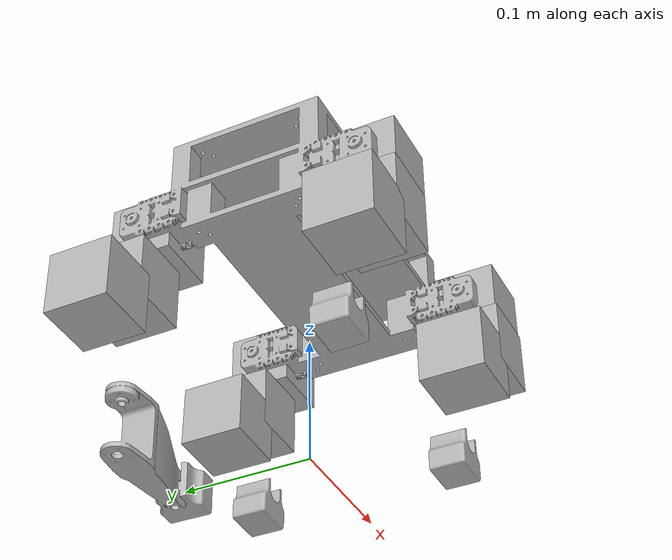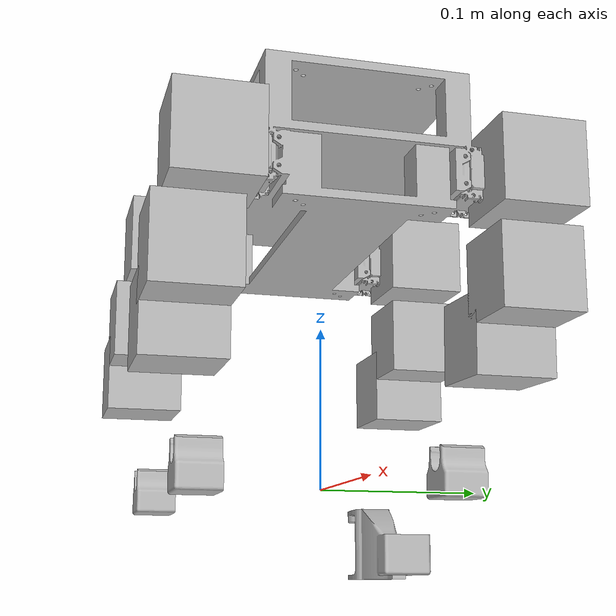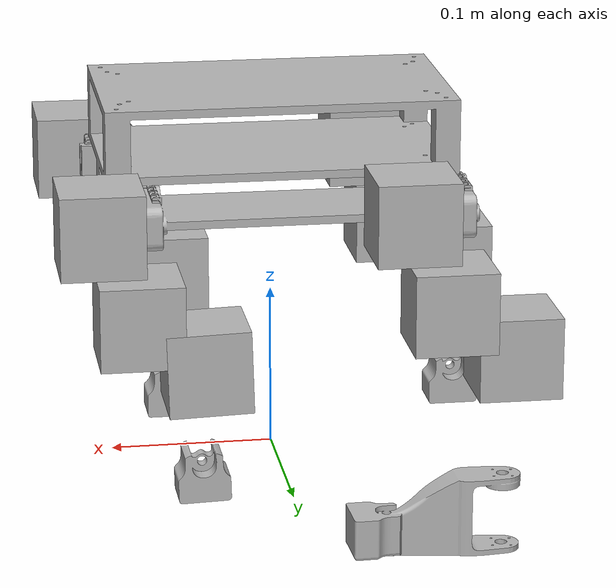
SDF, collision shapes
<sdf version='1.7'>
  <model name='clifford'>

    <link name='base_footprint'>
      <inertial>
        <pose>0.000111 9.7e-05 0.187074 0 -0 0</pose>
        <mass>0.672154</mass>
        <inertia>
          <ixx>0.000455916</ixx>
          <ixy>6.54064e-19</ixy>
          <ixz>-2.20229e-20</ixz>
          <iyy>0.00153054</iyy>
          <iyz>-3.9533e-11</iyz>
          <izz>0.0019462</izz>
        </inertia>
      </inertial>

      <collision name='base_footprint_fixed_joint_lump__base_link_collision'>
        <pose>0 0 0.19 0 -0 0</pose>
        <geometry>
          <mesh>
            <scale>1 1 1</scale>
            <uri>model://clifford/meshes/base_link.STL</uri>
          </mesh>
        </geometry>
      </collision>

      <visual name='base_footprint_fixed_joint_lump__base_link_visual'>
        <pose>0 0 0.19 0 -0 0</pose>
        <geometry>
          <mesh>
            <scale>1 1 1</scale>
            <uri>model://clifford/meshes/base_link.STL</uri>
          </mesh>
        </geometry>
      </visual>
    </link>

    <joint name='hombro_DA_joint' type='revolute'>
      <pose relative_to='base_footprint'>0.1126 -0.089679 0.17 3.14159 1.57079 3.14159</pose>
      <parent>base_footprint</parent>
      <child>hombro_DA_link</child>
      <axis>
        <xyz>0 0 1</xyz>
        <limit>
          <lower>-1.57</lower>
          <upper>1.57</upper>
          <effort>0</effort>
          <velocity>0</velocity>
        </limit>
        <dynamics>
          <spring_reference>0</spring_reference>
          <spring_stiffness>0</spring_stiffness>
        </dynamics>
      </axis>
    </joint>

    <link name='hombro_DA_link'>
      <pose relative_to='hombro_DA_joint'>0 0 0 0 -0 0</pose>
      <inertial>
        <pose>0.023513 0.010937 -0.018219 0 -0 0</pose>
        <mass>0.0261933</mass>
        <inertia>
          <ixx>9.41881e-06</ixx>
          <ixy>-2.95481e-07</ixy>
          <ixz>1.0199e-14</ixz>
          <iyy>7.07804e-06</iyy>
          <iyz>4.55867e-14</iyz>
          <izz>7.88632e-06</izz>
        </inertia>
      </inertial>
      <collision name='hombro_DA_link_collision'>
        <pose>0 0 0 0 -0 0</pose>
        <geometry>
          <box>
            <size>0.05 0.05 0.05</size>
          </box>
        </geometry>
      </collision>
      <visual name='hombro_DA_link_visual'>
        <pose>0 0 0 0 -0 0</pose>
        <geometry>
          <mesh>
            <scale>1 1 1</scale>
            <uri>model://clifford/meshes/hombro_DA_link.STL</uri>
          </mesh>
        </geometry>
      </visual>
    </link>

    <joint name='brazo_DA_joint' type='revolute'>
      <pose relative_to='hombro_DA_link'>0.0535 -0.00718 -0.018711 1.5708 -0 0</pose>
      <parent>hombro_DA_link</parent>
      <child>brazo_DA_link</child>
      <axis>
        <xyz>0 0 1</xyz>
        <limit>
          <lower>-1.57</lower>
          <upper>1.57</upper>
          <effort>0</effort>
          <velocity>0</velocity>
        </limit>
        <dynamics>
          <spring_reference>0</spring_reference>
          <spring_stiffness>0</spring_stiffness>
        </dynamics>
      </axis>
    </joint>

    <link name='brazo_DA_link'>
      <pose relative_to='brazo_DA_joint'>0 0 0 0 -0 0</pose>
      <inertial>
        <pose>0.014488 -0.019153 -0.019372 0 -0 0</pose>
        <mass>0.0941791</mass>
        <inertia>
          <ixx>8.49e-06</ixx>
          <ixy>-1.97665e-11</ixy>
          <ixz>-3.56875e-21</ixz>
          <iyy>1.93206e-05</iyy>
          <iyz>4.02151e-22</iyz>
          <izz>2.04323e-05</izz>
        </inertia>
      </inertial>
      <collision name='brazo_DA_link_collision'>
        <pose>0 0 0 0 -0 0</pose>
        <geometry>
          <box>
            <size>0.05 0.05 0.05</size>
          </box>
        </geometry>
      </collision>
      <visual name='brazo_DA_link_visual'>
        <pose>0 0 0 0 -0 0</pose>
        <geometry>
          <mesh>
            <scale>1 1 1</scale>
            <uri>model://clifford/meshes/brazo_DA_link.STL</uri>
          </mesh>
        </geometry>
      </visual>
    </link>

    <joint name='muneca_DA_joint' type='revolute'>
      <pose relative_to='brazo_DA_link'>0.0295 -0.039 0 0 -0 0</pose>
      <parent>brazo_DA_link</parent>
      <child>muneca_DA_link</child>
      <axis>
        <xyz>0 0 1</xyz>
        <limit>
          <lower>-1.57</lower>
          <upper>1.57</upper>
          <effort>0</effort>
          <velocity>0</velocity>
        </limit>
        <dynamics>
          <spring_reference>0</spring_reference>
          <spring_stiffness>0</spring_stiffness>
        </dynamics>
      </axis>
    </joint>

    <link name='muneca_DA_link'>
      <pose relative_to='muneca_DA_joint'>0 0 0 0 -0 0</pose>
      <inertial>
        <pose>0.057571 -0.000462 -0.014156 0 -0 0</pose>
        <mass>0.0944947</mass>
        <inertia>
          <ixx>1.79786e-05</ixx>
          <ixy>3.71927e-07</ixy>
          <ixz>-4.74778e-06</ixz>
          <iyy>4.7976e-05</iyy>
          <iyz>6.08497e-08</iyz>
          <izz>4.04156e-05</izz>
        </inertia>
      </inertial>
      <collision name='muneca_DA_link_collision'>
        <pose>0 0 0 0 -0 0</pose>
        <geometry>
          <box>
            <size>0.05 0.05 0.05</size>
          </box>
        </geometry>
      </collision>
      <collision name='muneca_DA_link_fixed_joint_lump__end_effector_DA_link_collision_1'>
        <pose>0.094739 -0.000812 -0.012222 -1.5708 0 1.5708</pose>
        <geometry>
          <mesh>
            <scale>1 1 1</scale>
            <uri>model://clifford/meshes/end_effector_DA_link.STL</uri>
          </mesh>
        </geometry>
      </collision>
      <visual name='muneca_DA_link_visual'>
        <pose>0 0 0 0 -0 0</pose>
        <geometry>
          <mesh>
            <scale>1 1 1</scale>
            <uri>model://clifford/meshes/muneca_DA_link.STL</uri>
          </mesh>
        </geometry>
      </visual>
      <visual name='muneca_DA_link_fixed_joint_lump__end_effector_DA_link_visual_1'>
        <pose>0.094739 -0.000812 -0.012222 -1.5708 0 1.5708</pose>
        <geometry>
          <mesh>
            <scale>1 1 1</scale>
            <uri>model://clifford/meshes/end_effector_DA_link.STL</uri>
          </mesh>
        </geometry>
      </visual>
    </link>

    <joint name='hombro_DT_joint' type='revolute'>
      <pose relative_to='base_footprint'>-0.0724 -0.089679 0.17 3.14159 1.57079 3.14159</pose>
      <parent>base_footprint</parent>
      <child>hombro_DT_link</child>
      <axis>
        <xyz>0 0 1</xyz>
        <limit>
          <lower>-1.57</lower>
          <upper>1.57</upper>
          <effort>0</effort>
          <velocity>0</velocity>
        </limit>
        <dynamics>
          <spring_reference>0</spring_reference>
          <spring_stiffness>0</spring_stiffness>
        </dynamics>
      </axis>
    </joint>

    <link name='hombro_DT_link'>
      <pose relative_to='hombro_DT_joint'>0 0 0 0 -0 0</pose>
      <inertial>
        <pose>0.023513 0.010937 -0.018219 0 -0 0</pose>
        <mass>0.0261933</mass>
        <inertia>
          <ixx>9.41881e-06</ixx>
          <ixy>-2.95481e-07</ixy>
          <ixz>1.0199e-14</ixz>
          <iyy>7.07804e-06</iyy>
          <iyz>4.55867e-14</iyz>
          <izz>7.88632e-06</izz>
        </inertia>
      </inertial>
      <collision name='hombro_DT_link_collision'>
        <pose>0 0 0 0 -0 0</pose>
        <geometry>
          <box>
            <size>0.05 0.05 0.05</size>
          </box>
        </geometry>
      </collision>
      <visual name='hombro_DT_link_visual'>
        <pose>0 0 0 0 -0 0</pose>
        <geometry>
          <mesh>
            <scale>1 1 1</scale>
            <uri>model://clifford/meshes/hombro_DT_link.STL</uri>
          </mesh>
        </geometry>
      </visual>
    </link>

    <joint name='brazo_DT_joint' type='revolute'>
      <pose relative_to='hombro_DT_link'>0.0535 -0.00718 -0.018711 1.5708 -0 0</pose>
      <parent>hombro_DT_link</parent>
      <child>brazo_DT_link</child>
      <axis>
        <xyz>0 0 1</xyz>
        <limit>
          <lower>-1.57</lower>
          <upper>1.57</upper>
          <effort>0</effort>
          <velocity>0</velocity>
        </limit>
        <dynamics>
          <spring_reference>0</spring_reference>
          <spring_stiffness>0</spring_stiffness>
        </dynamics>
      </axis>
    </joint>

    <link name='brazo_DT_link'>
      <pose relative_to='brazo_DT_joint'>0 0 0 0 -0 0</pose>
      <inertial>
        <pose>0.014488 -0.019153 -0.019372 0 -0 0</pose>
        <mass>0.0941791</mass>
        <inertia>
          <ixx>8.49e-06</ixx>
          <ixy>-1.97665e-11</ixy>
          <ixz>-3.3046e-21</ixz>
          <iyy>1.93206e-05</iyy>
          <iyz>1.00724e-22</iyz>
          <izz>2.04323e-05</izz>
        </inertia>
      </inertial>
      <collision name='brazo_DT_link_collision'>
        <pose>0 0 0 0 -0 0</pose>
        <geometry>
          <box>
            <size>0.05 0.05 0.05</size>
          </box>
        </geometry>
      </collision>
      <visual name='brazo_DT_link_visual'>
        <pose>0 0 0 0 -0 0</pose>
        <geometry>
          <mesh>
            <scale>1 1 1</scale>
            <uri>model://clifford/meshes/brazo_DT_link.STL</uri>
          </mesh>
        </geometry>
      </visual>
    </link>

    <joint name='muneca_DT_joint' type='revolute'>
      <pose relative_to='brazo_DT_link'>0.0295 -0.039 0 0 -0 0</pose>
      <parent>brazo_DT_link</parent>
      <child>muneca_DT_link</child>
      <axis>
        <xyz>0 0 1</xyz>
        <limit>
          <lower>-1.57</lower>
          <upper>1.57</upper>
          <effort>0</effort>
          <velocity>0</velocity>
        </limit>
        <dynamics>
          <spring_reference>0</spring_reference>
          <spring_stiffness>0</spring_stiffness>
        </dynamics>
      </axis>
    </joint>

    <link name='muneca_DT_link'>
      <pose relative_to='muneca_DT_joint'>0 0 0 0 -0 0</pose>
      <inertial>
        <pose>0.057571 -0.000462 -0.014156 0 -0 0</pose>
        <mass>0.0944947</mass>
        <inertia>
          <ixx>1.79786e-05</ixx>
          <ixy>3.71927e-07</ixy>
          <ixz>-4.74778e-06</ixz>
          <iyy>4.7976e-05</iyy>
          <iyz>6.08497e-08</iyz>
          <izz>4.04156e-05</izz>
        </inertia>
      </inertial>
      <collision name='muneca_DT_link_collision'>
        <pose>0 0 0 0 -0 0</pose>
        <geometry>
          <box>
            <size>0.05 0.05 0.05</size>
          </box>
        </geometry>
      </collision>
      <collision name='muneca_DT_link_fixed_joint_lump__end_effector_DT_link_collision_1'>
        <pose>0.094739 -0.000812 -0.012222 -1.5708 0 1.5708</pose>
        <geometry>
          <mesh>
            <scale>1 1 1</scale>
            <uri>model://clifford/meshes/end_effector_DT_link.STL</uri>
          </mesh>
        </geometry>
      </collision>
      <visual name='muneca_DT_link_visual'>
        <pose>0 0 0 0 -0 0</pose>
        <geometry>
          <mesh>
            <scale>1 1 1</scale>
            <uri>model://clifford/meshes/muneca_DT_link.STL</uri>
          </mesh>
        </geometry>
      </visual>
      <visual name='muneca_DT_link_fixed_joint_lump__end_effector_DT_link_visual_1'>
        <pose>0.094739 -0.000812 -0.012222 -1.5708 0 1.5708</pose>
        <geometry>
          <mesh>
            <scale>1 1 1</scale>
            <uri>model://clifford/meshes/end_effector_DT_link.STL</uri>
          </mesh>
        </geometry>
      </visual>
    </link>

    <joint name='hombro_IA_joint' type='revolute'>
      <pose relative_to='base_footprint'>0.1126 0.089821 0.17 3.14159 1.57079 3.14159</pose>
      <parent>base_footprint</parent>
      <child>hombro_IA_link</child>
      <axis>
        <xyz>0 0 1</xyz>
        <limit>
          <lower>-1.57</lower>
          <upper>1.57</upper>
          <effort>0</effort>
          <velocity>0</velocity>
        </limit>
        <dynamics>
          <spring_reference>0</spring_reference>
          <spring_stiffness>0</spring_stiffness>
        </dynamics>
      </axis>
    </joint>

    <link name='hombro_IA_link'>
      <pose relative_to='hombro_IA_joint'>0 0 0 0 -0 0</pose>
      <inertial>
        <pose>0.023513 -0.010937 -0.019606 0 -0 0</pose>
        <mass>0.0261933</mass>
        <inertia>
          <ixx>9.41881e-06</ixx>
          <ixy>2.95481e-07</ixy>
          <ixz>-1.0199e-14</ixz>
          <iyy>7.07804e-06</iyy>
          <iyz>4.55867e-14</iyz>
          <izz>7.88632e-06</izz>
        </inertia>
      </inertial>
      <collision name='hombro_IA_link_collision'>
        <pose>0 0 0 0 -0 0</pose>
        <geometry>
          <box>
            <size>0.05 0.05 0.05</size>
          </box>
        </geometry>
      </collision>
      <visual name='hombro_IA_link_visual'>
        <pose>0 0 0 0 -0 0</pose>
        <geometry>
          <mesh>
            <scale>1 1 1</scale>
            <uri>model://clifford/meshes/hombro_IA_link.STL</uri>
          </mesh>
        </geometry>
      </visual>
    </link>

    <joint name='brazo_IA_joint' type='revolute'>
      <pose relative_to='hombro_IA_link'>0.0535 0.00718 -0.021489 -1.5708 -0 -6.2e-05</pose>
      <parent>hombro_IA_link</parent>
      <child>brazo_IA_link</child>
      <axis>
        <xyz>0 0 1</xyz>
        <limit>
          <lower>-1.57</lower>
          <upper>1.57</upper>
          <effort>0</effort>
          <velocity>0</velocity>
        </limit>
        <dynamics>
          <spring_reference>0</spring_reference>
          <spring_stiffness>0</spring_stiffness>
        </dynamics>
      </axis>
    </joint>

    <link name='brazo_IA_link'>
      <pose relative_to='brazo_IA_joint'>0 0 0 0 -0 0</pose>
      <inertial>
        <pose>0.014489 0.019153 -0.019371 0 -0 0</pose>
        <mass>0.0941791</mass>
        <inertia>
          <ixx>8.49e-06</ixx>
          <ixy>-1.97665e-11</ixy>
          <ixz>-7.35973e-10</ixz>
          <iyy>1.93206e-05</iyy>
          <iyz>-1.21816e-15</iyz>
          <izz>2.04323e-05</izz>
        </inertia>
      </inertial>
      <collision name='brazo_IA_link_collision'>
        <pose>0 0 0 0 -0 0</pose>
        <geometry>
          <box>
            <size>0.05 0.05 0.05</size>
          </box>
        </geometry>
      </collision>
      <visual name='brazo_IA_link_visual'>
        <pose>0 0 0 0 -0 0</pose>
        <geometry>
          <mesh>
            <scale>1 1 1</scale>
            <uri>model://clifford/meshes/brazo_IA_link.STL</uri>
          </mesh>
        </geometry>
      </visual>
    </link>

    <joint name='muneca_IA_joint' type='revolute'>
      <pose relative_to='brazo_IA_link'>0.0295 0.039 0 0 -0 0.031417</pose>
      <parent>brazo_IA_link</parent>
      <child>muneca_IA_link</child>
      <axis>
        <xyz>0 0 1</xyz>
        <limit>
          <lower>-1.57</lower>
          <upper>1.57</upper>
          <effort>0</effort>
          <velocity>0</velocity>
        </limit>
        <dynamics>
          <spring_reference>0</spring_reference>
          <spring_stiffness>0</spring_stiffness>
        </dynamics>
      </axis>
    </joint>

    <link name='muneca_IA_link'>
      <pose relative_to='muneca_IA_joint'>0 0 0 0 -0 0</pose>
      <inertial>
        <pose>0.057556 -0.001413 -0.025677 0 -0 0</pose>
        <mass>0.0944947</mass>
        <inertia>
          <ixx>1.81132e-05</ixx>
          <ixy>5.87538e-07</ixy>
          <ixz>5.24347e-06</ixz>
          <iyy>4.80965e-05</iyy>
          <iyz>-9.9502e-08</iyz>
          <izz>4.04167e-05</izz>
        </inertia>
      </inertial>
      <collision name='muneca_IA_link_collision'>
        <pose>0 0 0 0 -0 0</pose>
        <geometry>
          <box>
            <size>0.05 0.05 0.05</size>
          </box>
        </geometry>
      </collision>
      <collision name='muneca_IA_link_fixed_joint_lump__end_effector_IA_link_collision_1'>
        <pose>0.094724 -0.001773 -0.028274 1.5709 -0 -1.6022</pose>
        <geometry>
          <mesh>
            <scale>1 1 1</scale>
            <uri>model://clifford/meshes/end_effector_IA_link.STL</uri>
          </mesh>
        </geometry>
      </collision>
      <visual name='muneca_IA_link_visual'>
        <pose>0 0 0 0 -0 0</pose>
        <geometry>
          <mesh>
            <scale>1 1 1</scale>
            <uri>model://clifford/meshes/muneca_IA_link.STL</uri>
          </mesh>
        </geometry>
      </visual>
      <visual name='muneca_IA_link_fixed_joint_lump__end_effector_IA_link_visual_1'>
        <pose>0.094724 -0.001773 -0.028274 1.5709 -0 -1.6022</pose>
        <geometry>
          <mesh>
            <scale>1 1 1</scale>
            <uri>model://clifford/meshes/end_effector_IA_link.STL</uri>
          </mesh>
        </geometry>
      </visual>
    </link>

    <joint name='hombro_IT_joint' type='revolute'>
      <pose relative_to='base_footprint'>-0.0724 0.089821 0.17 3.14159 1.57079 3.14159</pose>
      <parent>base_footprint</parent>
      <child>hombro_IT_link</child>
      <axis>
        <xyz>0 0 1</xyz>
        <limit>
          <lower>-1.57</lower>
          <upper>1.57</upper>
          <effort>0</effort>
          <velocity>0</velocity>
        </limit>
        <dynamics>
          <spring_reference>0</spring_reference>
          <spring_stiffness>0</spring_stiffness>
        </dynamics>
      </axis>
    </joint>
    <link name='hombro_IT_link'>
      <pose relative_to='hombro_IT_joint'>0 0 0 0 -0 0</pose>
      <inertial>
        <pose>0.023513 -0.010937 -0.019606 0 -0 0</pose>
        <mass>0.0261933</mass>
        <inertia>
          <ixx>9.41881e-06</ixx>
          <ixy>2.95481e-07</ixy>
          <ixz>-1.0199e-14</ixz>
          <iyy>7.07804e-06</iyy>
          <iyz>4.55867e-14</iyz>
          <izz>7.88632e-06</izz>
        </inertia>
      </inertial>
      <collision name='hombro_IT_link_collision'>
        <pose>0 0 0 0 -0 0</pose>
        <geometry>
          <box>
            <size>0.05 0.05 0.05</size>
          </box>
        </geometry>
      </collision>
      <visual name='hombro_IT_link_visual'>
        <pose>0 0 0 0 -0 0</pose>
        <geometry>
          <mesh>
            <scale>1 1 1</scale>
            <uri>model://clifford/meshes/hombro_IT_link.STL</uri>
          </mesh>
        </geometry>
      </visual>
    </link>

    <joint name='brazo_IT_joint' type='revolute'>
      <pose relative_to='hombro_IT_link'>0.0535 0.00718 -0.021489 -1.5708 -0 -6.2e-05</pose>
      <parent>hombro_IT_link</parent>
      <child>brazo_IT_link</child>
      <axis>
        <xyz>0 0 1</xyz>
        <limit>
          <lower>-1.57</lower>
          <upper>1.57</upper>
          <effort>0</effort>
          <velocity>0</velocity>
        </limit>
        <dynamics>
          <spring_reference>0</spring_reference>
          <spring_stiffness>0</spring_stiffness>
        </dynamics>
      </axis>
    </joint>

    <link name='brazo_IT_link'>
      <pose relative_to='brazo_IT_joint'>0 0 0 0 -0 0</pose>
      <inertial>
        <pose>0.014489 0.019153 -0.019371 0 -0 0</pose>
        <mass>0.0941791</mass>
        <inertia>
          <ixx>8.49e-06</ixx>
          <ixy>-1.97665e-11</ixy>
          <ixz>-7.35973e-10</ixz>
          <iyy>1.93206e-05</iyy>
          <iyz>-1.21816e-15</iyz>
          <izz>2.04323e-05</izz>
        </inertia>
      </inertial>
      <collision name='brazo_IT_link_collision'>
        <pose>0 0 0 0 -0 0</pose>
        <geometry>
          <box>
            <size>0.05 0.05 0.05</size>
          </box>
        </geometry>
      </collision>
      <visual name='brazo_IT_link_visual'>
        <pose>0 0 0 0 -0 0</pose>
        <geometry>
          <mesh>
            <scale>1 1 1</scale>
            <uri>model://clifford/meshes/brazo_IT_link.STL</uri>
          </mesh>
        </geometry>
      </visual>
    </link>

    <joint name='muneca_IT_joint' type='revolute'>
      <pose relative_to='brazo_IT_link'>0.0295 0.039 0 0 -6.2e-05 0</pose>
      <parent>brazo_IT_link</parent>
      <child>muneca_IT_link</child>
      <axis>
        <xyz>0 0 1</xyz>
        <limit>
          <lower>-1.57</lower>
          <upper>1.57</upper>
          <effort>0</effort>
          <velocity>0</velocity>
        </limit>
        <dynamics>
          <spring_reference>0</spring_reference>
          <spring_stiffness>0</spring_stiffness>
        </dynamics>
      </axis>
    </joint>

    <link name='muneca_IT_link'>
      <pose relative_to='muneca_IT_joint'>0 0 0 0 -0 0</pose>
      <inertial>
        <pose>0.05757 0.000395 -0.025681 0 -0 0</pose>
        <mass>0.0944947</mass>
        <inertia>
          <ixx>1.81065e-05</ixx>
          <ixy>-3.55109e-07</ixy>
          <ixz>5.24521e-06</ixz>
          <iyy>4.81035e-05</iyy>
          <iyz>6.52751e-08</iyz>
          <izz>4.04158e-05</izz>
        </inertia>
      </inertial>
      <collision name='muneca_IT_link_collision'>
        <pose>0 0 0 0 -0 0</pose>
        <geometry>
          <box>
            <size>0.05 0.05 0.05</size>
          </box>
        </geometry>
      </collision>
      <collision name='muneca_IT_link_fixed_joint_lump__end_effector_IT_link_collision_1'>
        <pose>0.094731 0.001203 -0.02828 1.5708 0 -1.5708</pose>
        <geometry>
          <mesh>
            <scale>1 1 1</scale>
            <uri>model://clifford/meshes/muneca_IT_link.STL</uri>
          </mesh>
        </geometry>
      </collision>
      <visual name='muneca_IT_link_visual'>
        <pose>0 0 0 0 -0 0</pose>
        <geometry>
          <mesh>
            <scale>1 1 1</scale>
            <uri>model://clifford/meshes/muneca_IT_link.STL</uri>
          </mesh>
        </geometry>
      </visual>
      <visual name='muneca_IT_link_fixed_joint_lump__end_effector_IT_link_visual_1'>
        <pose>0.094731 0.001203 -0.02828 1.5708 0 -1.5708</pose>
        <geometry>
          <mesh>
            <scale>1 1 1</scale>
            <uri>model://clifford/meshes/end_effector_IT_link.STL</uri>
          </mesh>
        </geometry>
      </visual>
    </link>
  </model>
</sdf>
